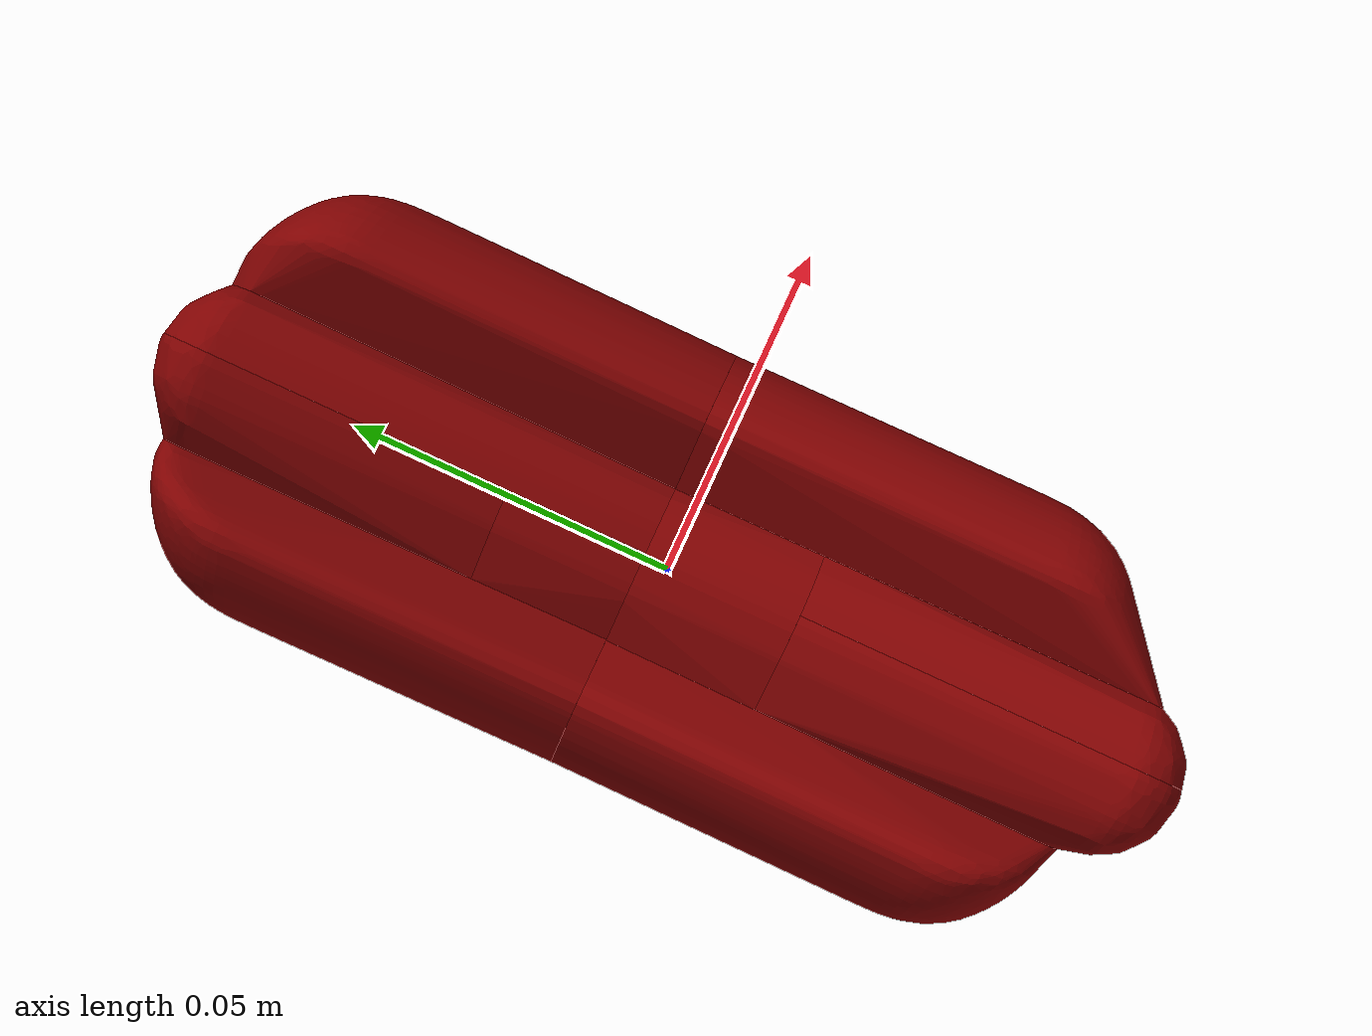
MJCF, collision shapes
<?xml version='1.0' encoding='utf-8'?>
<mujoco model="hot_dog_5">
  <asset>
    <mesh file="visual/model_normalized_0.obj" name="model_normalized_0_vis" scale="0.14999999999999997 0.14999999999999997 0.14999999999999997" refquat="1.0 0.0 0.0 0.0" />
    <mesh file="visual/model_normalized_1.obj" name="model_normalized_1_vis" scale="0.14999999999999997 0.14999999999999997 0.14999999999999997" refquat="1.0 0.0 0.0 0.0" />
    <mesh file="visual/model_normalized_2.obj" name="model_normalized_2_vis" scale="0.14999999999999997 0.14999999999999997 0.14999999999999997" refquat="1.0 0.0 0.0 0.0" />
    <texture type="2d" name="image0" file="visual/image0.png" />
    <texture type="2d" name="image2" file="visual/image2.png" />
    <texture type="2d" name="image1" file="visual/image1.png" />
    <material name="bunleft" texture="image0" specular="0.5" shininess="0.0" />
    <material name="bunright" texture="image2" specular="0.5" shininess="0.0" />
    <material name="hotdog" texture="image1" specular="0.5" shininess="0.25" />
    <mesh file="collision/collision_mesh_collision_0.obj" name="hot_collision_mesh_0" scale="0.14999999999999997 0.14999999999999997 0.14999999999999997" refquat="1.0 0.0 0.0 0.0" />
    <mesh file="collision/collision_mesh_collision_1.obj" name="hot_collision_mesh_1" scale="0.14999999999999997 0.14999999999999997 0.14999999999999997" refquat="1.0 0.0 0.0 0.0" />
    <mesh file="collision/collision_mesh_collision_2.obj" name="hot_collision_mesh_2" scale="0.14999999999999997 0.14999999999999997 0.14999999999999997" refquat="1.0 0.0 0.0 0.0" />
    <mesh file="collision/collision_mesh_collision_3.obj" name="hot_collision_mesh_3" scale="0.14999999999999997 0.14999999999999997 0.14999999999999997" refquat="1.0 0.0 0.0 0.0" />
    <mesh file="collision/collision_mesh_collision_4.obj" name="hot_collision_mesh_4" scale="0.14999999999999997 0.14999999999999997 0.14999999999999997" refquat="1.0 0.0 0.0 0.0" />
    <mesh file="collision/collision_mesh_collision_5.obj" name="hot_collision_mesh_5" scale="0.14999999999999997 0.14999999999999997 0.14999999999999997" refquat="1.0 0.0 0.0 0.0" />
    <mesh file="collision/collision_mesh_collision_6.obj" name="hot_collision_mesh_6" scale="0.14999999999999997 0.14999999999999997 0.14999999999999997" refquat="1.0 0.0 0.0 0.0" />
    <mesh file="collision/collision_mesh_collision_7.obj" name="hot_collision_mesh_7" scale="0.14999999999999997 0.14999999999999997 0.14999999999999997" refquat="1.0 0.0 0.0 0.0" />
    <mesh file="collision/collision_mesh_collision_8.obj" name="hot_collision_mesh_8" scale="0.14999999999999997 0.14999999999999997 0.14999999999999997" refquat="1.0 0.0 0.0 0.0" />
    <mesh file="collision/collision_mesh_collision_9.obj" name="hot_collision_mesh_9" scale="0.14999999999999997 0.14999999999999997 0.14999999999999997" refquat="1.0 0.0 0.0 0.0" />
    <mesh file="collision/collision_mesh_collision_10.obj" name="hot_collision_mesh_10" scale="0.14999999999999997 0.14999999999999997 0.14999999999999997" refquat="1.0 0.0 0.0 0.0" />
  </asset>
  <default>
    <default class="region">
      <geom group="1" conaffinity="0" contype="0" rgba="0 1 0 0" />
    </default>
    <default class="collision">
      <geom group="0" rgba="0.5 0 0 0.5" density="1000.0" />
    </default>
  </default>
  <worldbody>
    <body>
      <body name="object">
        <geom solimp="0.998 0.998 0.001" solref="0.001 1" density="100" friction="0.95 0.3 0.1" type="mesh" mesh="model_normalized_0_vis" conaffinity="0" contype="0" group="1" material="bunright" />
        <geom solimp="0.998 0.998 0.001" solref="0.001 1" density="100" friction="0.95 0.3 0.1" type="mesh" mesh="model_normalized_1_vis" conaffinity="0" contype="0" group="1" material="hotdog" />
        <geom solimp="0.998 0.998 0.001" solref="0.001 1" density="100" friction="0.95 0.3 0.1" type="mesh" mesh="model_normalized_2_vis" conaffinity="0" contype="0" group="1" material="bunleft" />
        <geom class="region" name="reg_bbox" type="box" pos="1.2750000001615633e-08 -3.8924999999911937e-07 -0.00013450875000000013" size="0.032511438749999996 0.07554621824999999 0.026100824249999995" />
        <geom mesh="hot_collision_mesh_0" type="mesh" class="collision" />
        <geom mesh="hot_collision_mesh_1" type="mesh" class="collision" />
        <geom mesh="hot_collision_mesh_2" type="mesh" class="collision" />
        <geom mesh="hot_collision_mesh_3" type="mesh" class="collision" />
        <geom mesh="hot_collision_mesh_4" type="mesh" class="collision" />
        <geom mesh="hot_collision_mesh_5" type="mesh" class="collision" />
        <geom mesh="hot_collision_mesh_6" type="mesh" class="collision" />
        <geom mesh="hot_collision_mesh_7" type="mesh" class="collision" />
        <geom mesh="hot_collision_mesh_8" type="mesh" class="collision" />
        <geom mesh="hot_collision_mesh_9" type="mesh" class="collision" />
        <geom mesh="hot_collision_mesh_10" type="mesh" class="collision" />
      </body>
    <site rgba="0 0 0 0" size="0.005" pos="0 0 -0.026235333" name="bottom_site" /><site rgba="0 0 0 0" size="0.005" pos="0 0 0.025966315" name="top_site" /><site rgba="0 0 0 0" size="0.005" pos="0.075546607 0.075546607 0" name="horizontal_radius_site" /></body>
  </worldbody>
</mujoco>
